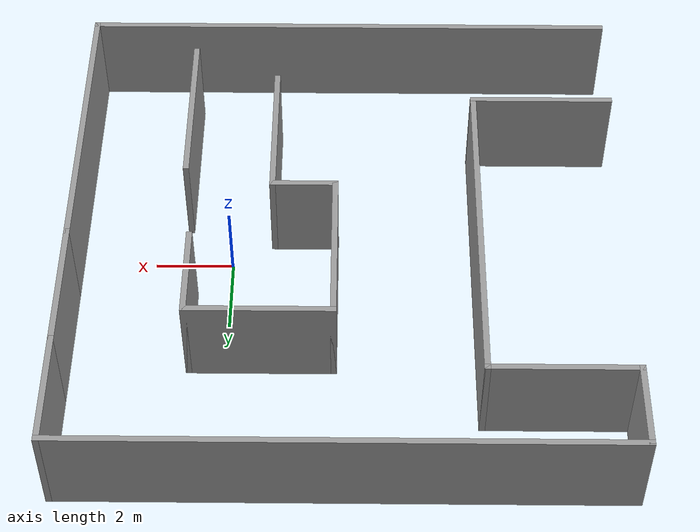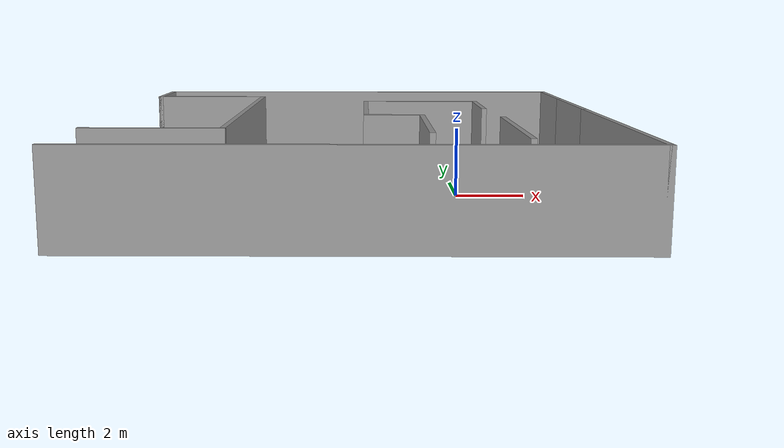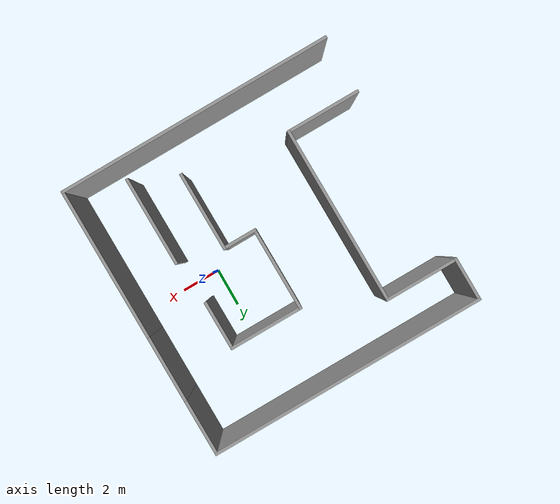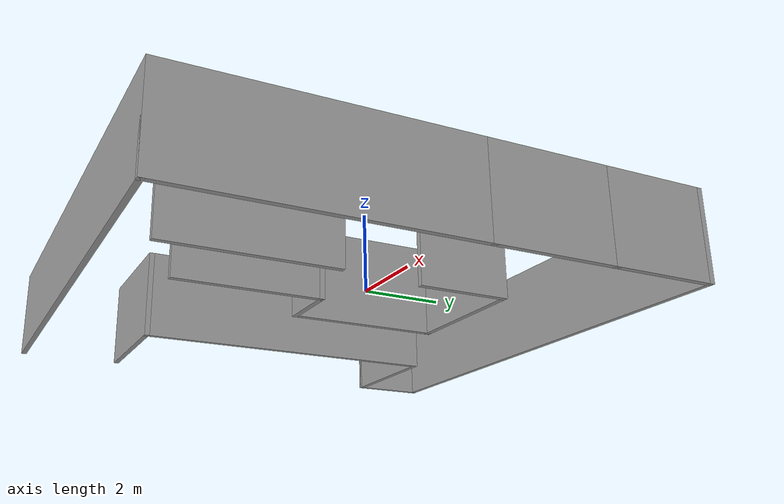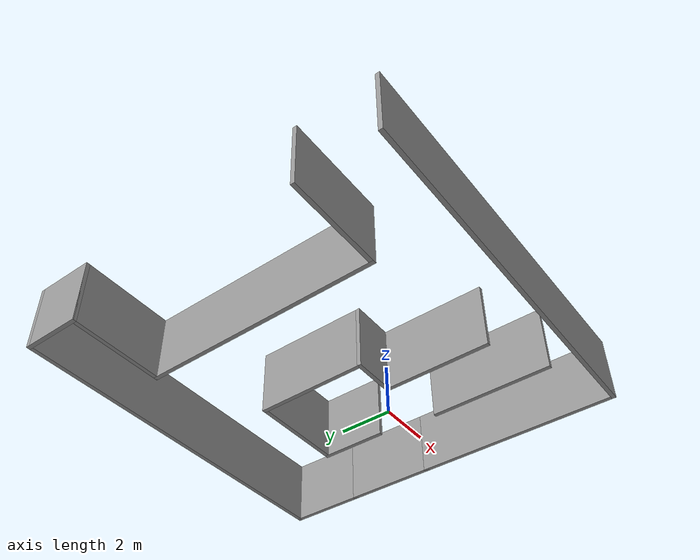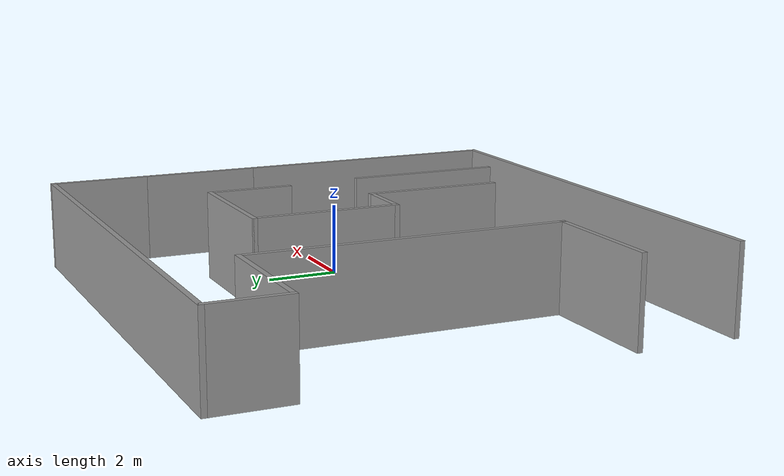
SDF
<?xml version='1.0'?>
<sdf version='1.7'>
  <model name='room'>
    <pose>-2.9627 0.280351 0 0 -0 0</pose>
    <link name='Wall_10'>
      <collision name='Wall_10_Collision'>
        <geometry>
          <box>
            <size>14 0.15 2.5</size>
          </box>
        </geometry>
        <pose>0 0 1.25 0 -0 0</pose>
      </collision>
      <visual name='Wall_10_Visual'>
        <pose>0 0 1.25 0 -0 0</pose>
        <geometry>
          <box>
            <size>14 0.15 2.5</size>
          </box>
        </geometry>
        <material>
          <script>
            <uri>file://media/materials/scripts/gazebo.material</uri>
            <name>Gazebo/Grey</name>
          </script>
          <ambient>1 1 1 1</ambient>
        </material>
        <meta>
          <layer>0</layer>
        </meta>
      </visual>
      <pose>0 6.9 0 0 -0 3.14159</pose>
    </link>
    <link name='Wall_11'>
      <collision name='Wall_11_Collision'>
        <geometry>
          <box>
            <size>2.25 0.15 2.5</size>
          </box>
        </geometry>
        <pose>0 0 1.25 0 -0 0</pose>
      </collision>
      <visual name='Wall_11_Visual'>
        <pose>0 0 1.25 0 -0 0</pose>
        <geometry>
          <box>
            <size>2.25 0.15 2.5</size>
          </box>
        </geometry>
        <material>
          <script>
            <uri>file://media/materials/scripts/gazebo.material</uri>
            <name>Gazebo/Grey</name>
          </script>
          <ambient>1 1 1 1</ambient>
        </material>
        <meta>
          <layer>0</layer>
        </meta>
      </visual>
      <pose>-6.925 5.85 0 0 -0 -1.5708</pose>
    </link>
    <link name='Wall_12'>
      <collision name='Wall_12_Collision'>
        <geometry>
          <box>
            <size>3.75 0.15 2.5</size>
          </box>
        </geometry>
        <pose>0 0 1.25 0 -0 0</pose>
      </collision>
      <visual name='Wall_12_Visual'>
        <pose>0 0 1.25 0 -0 0</pose>
        <geometry>
          <box>
            <size>3.75 0.15 2.5</size>
          </box>
        </geometry>
        <material>
          <script>
            <uri>file://media/materials/scripts/gazebo.material</uri>
            <name>Gazebo/Grey</name>
          </script>
          <ambient>1 1 1 1</ambient>
        </material>
        <meta>
          <layer>0</layer>
        </meta>
      </visual>
      <pose>-5.125 4.8 0 0 -0 0</pose>
    </link>
    <link name='Wall_13'>
      <collision name='Wall_13_Collision'>
        <geometry>
          <box>
            <size>9 0.15 2.5</size>
          </box>
        </geometry>
        <pose>0 0 1.25 0 -0 0</pose>
      </collision>
      <visual name='Wall_13_Visual'>
        <pose>0 0 1.25 0 -0 0</pose>
        <geometry>
          <box>
            <size>9 0.15 2.5</size>
          </box>
        </geometry>
        <material>
          <script>
            <uri>file://media/materials/scripts/gazebo.material</uri>
            <name>Gazebo/Grey</name>
          </script>
          <ambient>1 1 1 1</ambient>
        </material>
        <meta>
          <layer>0</layer>
        </meta>
      </visual>
      <pose>-3.325 0.375 0 0 -0 -1.5708</pose>
    </link>
    <link name='Wall_14'>
      <collision name='Wall_14_Collision'>
        <geometry>
          <box>
            <size>3.75 0.15 2.5</size>
          </box>
        </geometry>
        <pose>0 0 1.25 0 -0 0</pose>
      </collision>
      <visual name='Wall_14_Visual'>
        <pose>0 0 1.25 0 -0 0</pose>
        <geometry>
          <box>
            <size>3.75 0.15 2.5</size>
          </box>
        </geometry>
        <material>
          <script>
            <uri>file://media/materials/scripts/gazebo.material</uri>
            <name>Gazebo/Grey</name>
          </script>
          <ambient>1 1 1 1</ambient>
        </material>
        <meta>
          <layer>0</layer>
        </meta>
      </visual>
      <pose>-5.125 -4.05 0 0 -0 3.14159</pose>
    </link>
    <link name='Wall_16'>
      <collision name='Wall_16_Collision'>
        <geometry>
          <box>
            <size>4 0.15 2.5</size>
          </box>
        </geometry>
        <pose>0 0 1.25 0 -0 0</pose>
      </collision>
      <visual name='Wall_16_Visual'>
        <pose>0 0 1.25 0 -0 0</pose>
        <geometry>
          <box>
            <size>4 0.15 2.5</size>
          </box>
        </geometry>
        <material>
          <script>
            <uri>file://media/materials/scripts/gazebo.material</uri>
            <name>Gazebo/Grey</name>
          </script>
          <ambient>1 1 1 1</ambient>
        </material>
        <meta>
          <layer>0</layer>
        </meta>
      </visual>
      <pose>1.88461 -2.90503 0 0 -0 1.5708</pose>
    </link>
    <link name='Wall_17'>
      <collision name='Wall_17_Collision'>
        <geometry>
          <box>
            <size>1.75 0.15 2.5</size>
          </box>
        </geometry>
        <pose>0 0 1.25 0 -0 0</pose>
      </collision>
      <visual name='Wall_17_Visual'>
        <pose>0 0 1.25 0 -0 0</pose>
        <geometry>
          <box>
            <size>1.75 0.15 2.5</size>
          </box>
        </geometry>
        <material>
          <script>
            <uri>file://media/materials/scripts/gazebo.material</uri>
            <name>Gazebo/Grey</name>
          </script>
          <ambient>1 1 1 1</ambient>
        </material>
        <meta>
          <layer>0</layer>
        </meta>
      </visual>
      <pose>1.08461 -0.980035 0 0 -0 3.14159</pose>
    </link>
    <link name='Wall_18'>
      <collision name='Wall_18_Collision'>
        <geometry>
          <box>
            <size>4.25 0.15 2.5</size>
          </box>
        </geometry>
        <pose>0 0 1.25 0 -0 0</pose>
      </collision>
      <visual name='Wall_18_Visual'>
        <pose>0 0 1.25 0 -0 0</pose>
        <geometry>
          <box>
            <size>4.25 0.15 2.5</size>
          </box>
        </geometry>
        <material>
          <script>
            <uri>file://media/materials/scripts/gazebo.material</uri>
            <name>Gazebo/Grey</name>
          </script>
          <ambient>1 1 1 1</ambient>
        </material>
        <meta>
          <layer>0</layer>
        </meta>
      </visual>
      <pose>0.284605 1.06997 0 0 -0 1.5708</pose>
    </link>
    <link name='Wall_19'>
      <collision name='Wall_19_Collision'>
        <geometry>
          <box>
            <size>3.75 0.15 2.5</size>
          </box>
        </geometry>
        <pose>0 0 1.25 0 -0 0</pose>
      </collision>
      <visual name='Wall_19_Visual'>
        <pose>0 0 1.25 0 -0 0</pose>
        <geometry>
          <box>
            <size>3.75 0.15 2.5</size>
          </box>
        </geometry>
        <material>
          <script>
            <uri>file://media/materials/scripts/gazebo.material</uri>
            <name>Gazebo/Grey</name>
          </script>
          <ambient>1 1 1 1</ambient>
        </material>
        <meta>
          <layer>0</layer>
        </meta>
      </visual>
      <pose>2.0846 3.11997 0 0 -0 0</pose>
    </link>
    <link name='Wall_20'>
      <collision name='Wall_20_Collision'>
        <geometry>
          <box>
            <size>2.5 0.15 2.5</size>
          </box>
        </geometry>
        <pose>0 0 1.25 0 -0 0</pose>
      </collision>
      <visual name='Wall_20_Visual'>
        <pose>0 0 1.25 0 -0 0</pose>
        <geometry>
          <box>
            <size>2.5 0.15 2.5</size>
          </box>
        </geometry>
        <material>
          <script>
            <uri>file://media/materials/scripts/gazebo.material</uri>
            <name>Gazebo/Grey</name>
          </script>
          <ambient>1 1 1 1</ambient>
        </material>
        <meta>
          <layer>0</layer>
        </meta>
      </visual>
      <pose>3.88461 1.94497 0 0 -0 -1.5708</pose>
    </link>
    <link name='Wall_23'>
      <collision name='Wall_23_Collision'>
        <geometry>
          <box>
            <size>4.5 0.15 2.5</size>
          </box>
        </geometry>
        <pose>0 0 1.25 0 -0 0</pose>
      </collision>
      <visual name='Wall_23_Visual'>
        <pose>0 0 1.25 0 -0 0</pose>
        <geometry>
          <box>
            <size>4.5 0.15 2.5</size>
          </box>
        </geometry>
        <material>
          <script>
            <uri>file://media/materials/scripts/gazebo.material</uri>
            <name>Gazebo/Grey</name>
          </script>
          <ambient>1 1 1 1</ambient>
        </material>
        <meta>
          <layer>0</layer>
        </meta>
      </visual>
      <pose>4.11769 -3.70129 0 0 -0 -1.5708</pose>
    </link>
    <link name='Wall_4'>
      <collision name='Wall_4_Collision'>
        <geometry>
          <box>
            <size>14 0.15 2.5</size>
          </box>
        </geometry>
        <pose>0 0 1.25 0 -0 0</pose>
      </collision>
      <visual name='Wall_4_Visual'>
        <pose>0 0 1.25 0 -0 0</pose>
        <geometry>
          <box>
            <size>14 0.15 2.5</size>
          </box>
        </geometry>
        <material>
          <script>
            <uri>file://media/materials/scripts/gazebo.material</uri>
            <name>Gazebo/Grey</name>
          </script>
          <ambient>1 1 1 1</ambient>
        </material>
        <meta>
          <layer>0</layer>
        </meta>
      </visual>
      <pose>0 -6.9 0 0 -0 0</pose>
    </link>
    <link name='Wall_5'>
      <collision name='Wall_5_Collision'>
        <geometry>
          <box>
            <size>7.75 0.15 2.5</size>
          </box>
        </geometry>
        <pose>0 0 1.25 0 -0 0</pose>
      </collision>
      <visual name='Wall_5_Visual'>
        <pose>0 0 1.25 0 -0 0</pose>
        <geometry>
          <box>
            <size>7.75 0.15 2.5</size>
          </box>
        </geometry>
        <material>
          <script>
            <uri>file://media/materials/scripts/gazebo.material</uri>
            <name>Gazebo/Grey</name>
          </script>
          <ambient>1 1 1 1</ambient>
        </material>
        <meta>
          <layer>0</layer>
        </meta>
      </visual>
      <pose>6.925 -3.1 0 0 -0 1.5708</pose>
    </link>
    <link name='Wall_6'>
      <collision name='Wall_6_Collision'>
        <geometry>
          <box>
            <size>3.5 0.15 2.5</size>
          </box>
        </geometry>
        <pose>0 0 1.25 0 -0 0</pose>
      </collision>
      <visual name='Wall_6_Visual'>
        <pose>0 0 1.25 0 -0 0</pose>
        <geometry>
          <box>
            <size>3.5 0.15 2.5</size>
          </box>
        </geometry>
        <material>
          <script>
            <uri>file://media/materials/scripts/gazebo.material</uri>
            <name>Gazebo/Grey</name>
          </script>
          <ambient>1 1 1 1</ambient>
        </material>
        <meta>
          <layer>0</layer>
        </meta>
      </visual>
      <pose>6.925 2.375 0 0 -0 1.5708</pose>
    </link>
    <link name='Wall_9'>
      <collision name='Wall_9_Collision'>
        <geometry>
          <box>
            <size>3 0.15 2.5</size>
          </box>
        </geometry>
        <pose>0 0 1.25 0 -0 0</pose>
      </collision>
      <visual name='Wall_9_Visual'>
        <pose>0 0 1.25 0 -0 0</pose>
        <geometry>
          <box>
            <size>3 0.15 2.5</size>
          </box>
        </geometry>
        <material>
          <script>
            <uri>file://media/materials/scripts/gazebo.material</uri>
            <name>Gazebo/Grey</name>
          </script>
          <ambient>1 1 1 1</ambient>
        </material>
        <meta>
          <layer>0</layer>
        </meta>
      </visual>
      <pose>6.925 5.475 0 0 -0 1.5708</pose>
    </link>
    <static>1</static>
  </model>
</sdf>
